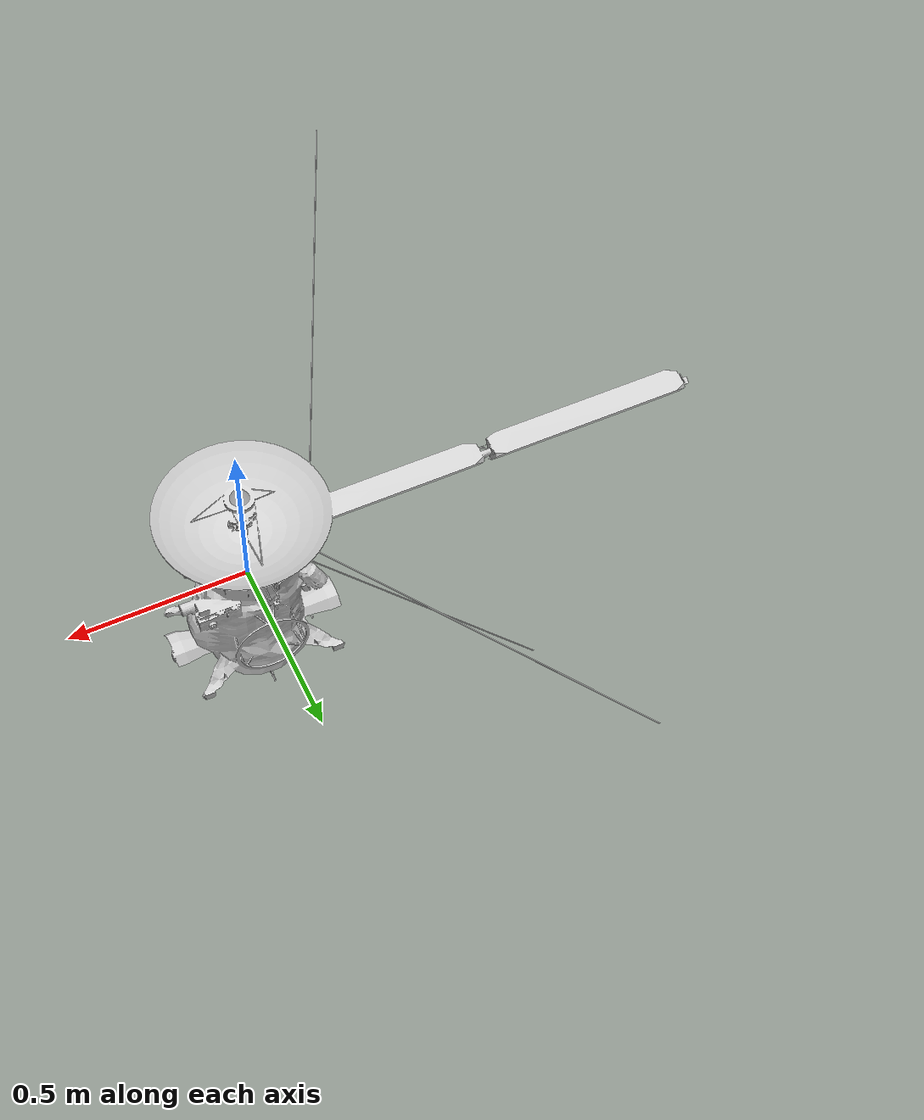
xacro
<?xml version='1.0'?>
<robot xmlns:xacro="http://www.ros.org/wiki/xacro" name="cubesat">
    <xacro:include filename="dimensions.xacro"/>
    <xacro:include filename="macros.xacro"/>

    <!-- World -->
    <link name="estimated_pose"></link>

    <!-- Body -->
    <link name="target_body">
        <collision name="body_collision">
            <geometry>
                <cylinder radius="0.2" length="0.55"/>
            </geometry>
        </collision>

        <visual name="body_visual_cube">
            <origin rpy="0 0 ${pi/2}"/>
            <geometry>
                <mesh filename="/home/frank20a/dev-ws/models/cassini/meshes/cassini.dae"/>
            </geometry>
        </visual>

        <xacro:inertial_box mass="5" x="0.4" y="0.4" z="0.6">
            <origin xyz="0 0 0"/>
        </xacro:inertial_box>
    </link>

    <joint name="body_fix" type="fixed">
        <origin rpy="0 0 ${pi/2}"/>
        <parent link="estimated_pose"/>
        <child link="target_body"/>
    </joint>

    <xacro:include filename="gazebo.xacro"/>
</robot>

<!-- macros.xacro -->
<robot xmlns:xacro="http://www.ros.org/wiki/xacro">

    <!-- Inertial -->
    <xacro:macro name="inertial_sphere" params="mass radius *origin">
        <inertial>
            <xacro:insert_block name="origin"/>
            <mass value="${mass}" />
            <inertia ixx="${(2/5) * mass * (radius*radius)}" ixy="0.0" ixz="0.0"
                    iyy="${(2/5) * mass * (radius*radius)}" iyz="0.0"
                    izz="${(2/5) * mass * (radius*radius)}" />
        </inertial>
    </xacro:macro>

    <xacro:macro name="inertial_box" params="mass x y z *origin">
        <inertial>
            <xacro:insert_block name="origin"/>
            <mass value="${mass}" />
            <inertia ixx="${(1/12) * mass * (y*y+z*z)}" ixy="0.0" ixz="0.0"
                    iyy="${(1/12) * mass * (x*x+z*z)}" iyz="0.0"
                    izz="${(1/12) * mass * (x*x+y*y)}" />
        </inertial>
    </xacro:macro>

    <xacro:macro name="inertial_cylinder" params="mass length radius *origin">
        <inertial>
            <xacro:insert_block name="origin"/>
            <mass value="${mass}" />
            <inertia ixx="${(1/12) * mass * (3*radius*radius + length*length)}" ixy="0.0" ixz="0.0"
                    iyy="${(1/12) * mass * (3*radius*radius + length*length)}" iyz="0.0"
                    izz="${(1/2) * mass * (radius*radius)}" />
        </inertial>
    </xacro:macro>

</robot>
